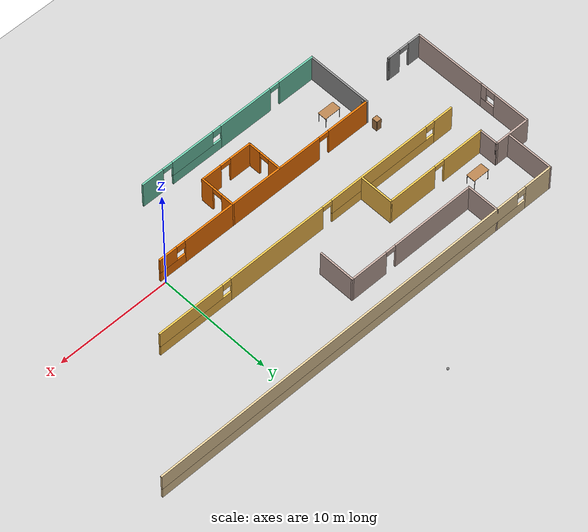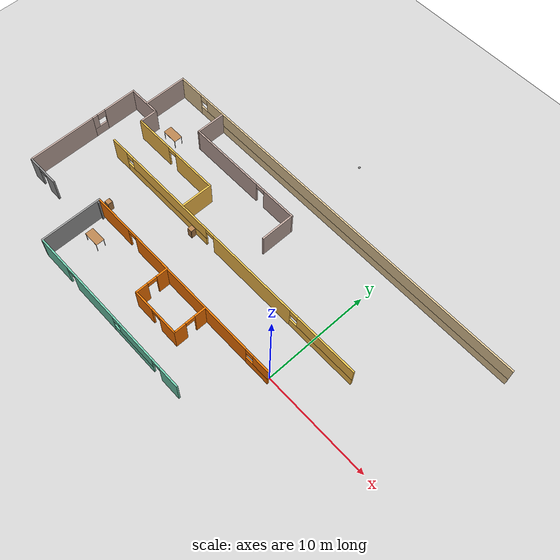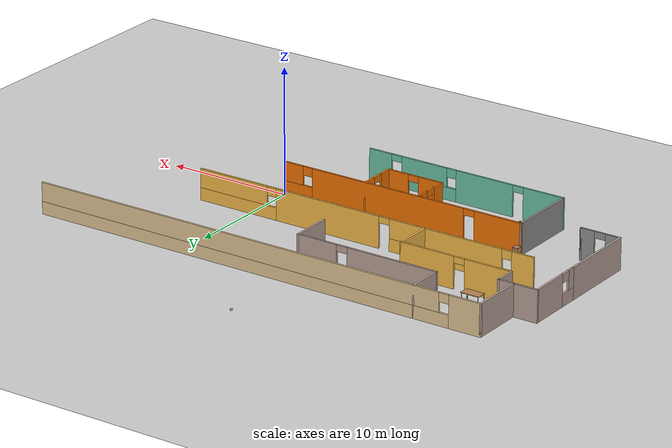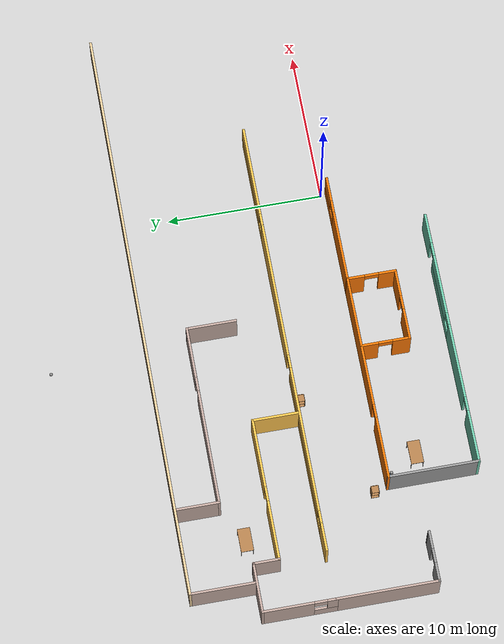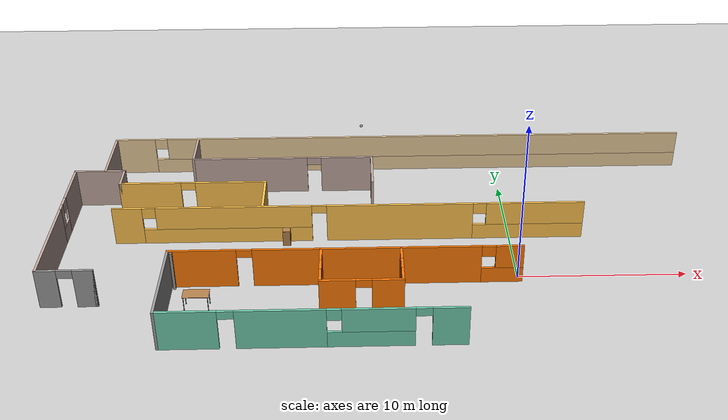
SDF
<sdf version="1.6">
 <world name="default">
  <model name="ground_plane">
   <static>1</static>
   <link name="link">
    <collision name="collision">
     <geometry><plane><normal>0 0 1</normal><size>100 100</size></plane></geometry>
     <surface>
      <contact><collide_bitmask>65535</collide_bitmask></contact>
      <friction><ode><mu>100</mu><mu2>50</mu2></ode></friction>
     </surface>
    </collision>
    <visual name="visual">
     <cast_shadows>0</cast_shadows>
     <geometry><plane><normal>0 0 1</normal><size>100 100</size></plane></geometry>
     <material>
      <script><uri>file://media/materials/scripts/gazebo.material</uri><name>Gazebo/Grey</name></script>
     </material>
    </visual>
   </link>
  </model>
  <model name="office">
   <pose>-7.49516 -7.8361 0 0 -0 0</pose>
   <link name="Wall_107">
    <pose>-3.97884 5.92013 0 0 0 -1.5708</pose>
    <visual name="Wall_107_Visual_0">
     <pose>-1.03263 0 1.25 0 -0 0</pose>
     <geometry><box><size>1.16841 0.15 2.5</size></box></geometry>
     <material>
      <script><uri>file://media/materials/scripts/gazebo.material</uri><name>Gazebo/Grey</name></script>
      <ambient>0.996078 0.47451 0.0196078 1</ambient>
     </material>
     <meta><layer>0</layer></meta>
    </visual>
    <collision name="Wall_107_Collision_0">
     <geometry><box><size>1.16841 0.15 2.5</size></box></geometry>
     <pose>-1.03263 0 1.25 0 -0 0</pose>
    </collision>
    <visual name="Wall_107_Visual_1">
     <pose>1.0342 0 1.25 0 -0 0</pose>
     <geometry><box><size>1.16527 0.15 2.5</size></box></geometry>
     <material>
      <script><uri>file://media/materials/scripts/gazebo.material</uri><name>Gazebo/Grey</name></script>
      <ambient>0.996078 0.47451 0.0196078 1</ambient>
     </material>
     <meta><layer>0</layer></meta>
    </visual>
    <collision name="Wall_107_Collision_1">
     <geometry><box><size>1.16527 0.15 2.5</size></box></geometry>
     <pose>1.0342 0 1.25 0 -0 0</pose>
    </collision>
    <visual name="Wall_107_Visual_2">
     <pose>0.001569 0 2.25 0 -0 0</pose>
     <geometry><box><size>0.9 0.15 0.5</size></box></geometry>
     <material>
      <script><uri>file://media/materials/scripts/gazebo.material</uri><name>Gazebo/Grey</name></script>
      <ambient>0.996078 0.47451 0.0196078 1</ambient>
     </material>
     <meta><layer>0</layer></meta>
    </visual>
    <collision name="Wall_107_Collision_2">
     <geometry><box><size>0.9 0.15 0.5</size></box></geometry>
     <pose>0.001569 0 2.25 0 -0 0</pose>
    </collision>
   </link>
   <link name="Wall_108">
    <pose>-1.67884 4.37813 0 0 -0 0</pose>
    <visual name="Wall_108_Visual_0">
     <pose>-1.35534 0 1.25 0 -0 0</pose>
     <geometry><box><size>2.03931 0.15 2.5</size></box></geometry>
     <material>
      <script><uri>file://media/materials/scripts/gazebo.material</uri><name>Gazebo/Grey</name></script>
      <ambient>0.996078 0.47451 0.0196078 1</ambient>
     </material>
     <meta><layer>0</layer></meta>
    </visual>
    <collision name="Wall_108_Collision_0">
     <geometry><box><size>2.03931 0.15 2.5</size></box></geometry>
     <pose>-1.35534 0 1.25 0 -0 0</pose>
    </collision>
    <visual name="Wall_108_Visual_1">
     <pose>1.46966 0 1.25 0 -0 0</pose>
     <geometry><box><size>1.81069 0.15 2.5</size></box></geometry>
     <material>
      <script><uri>file://media/materials/scripts/gazebo.material</uri><name>Gazebo/Grey</name></script>
      <ambient>0.996078 0.47451 0.0196078 1</ambient>
     </material>
     <meta><layer>0</layer></meta>
    </visual>
    <collision name="Wall_108_Collision_1">
     <geometry><box><size>1.81069 0.15 2.5</size></box></geometry>
     <pose>1.46966 0 1.25 0 -0 0</pose>
    </collision>
    <visual name="Wall_108_Visual_2">
     <pose>0.114313 0 2.25 0 -0 0</pose>
     <geometry><box><size>0.9 0.15 0.5</size></box></geometry>
     <material>
      <script><uri>file://media/materials/scripts/gazebo.material</uri><name>Gazebo/Grey</name></script>
      <ambient>0.996078 0.47451 0.0196078 1</ambient>
     </material>
     <meta><layer>0</layer></meta>
    </visual>
    <collision name="Wall_108_Collision_2">
     <geometry><box><size>0.9 0.15 0.5</size></box></geometry>
     <pose>0.114313 0 2.25 0 -0 0</pose>
    </collision>
   </link>
   <link name="Wall_109">
    <pose>0.621161 5.92013 0 0 -0 1.5708</pose>
    <visual name="Wall_109_Visual_0">
     <pose>-1.03428 0 1.25 0 -0 0</pose>
     <geometry><box><size>1.16543 0.15 2.5</size></box></geometry>
     <material>
      <script><uri>file://media/materials/scripts/gazebo.material</uri><name>Gazebo/Grey</name></script>
      <ambient>0.996078 0.47451 0.0196078 1</ambient>
     </material>
     <meta><layer>0</layer></meta>
    </visual>
    <collision name="Wall_109_Collision_0">
     <geometry><box><size>1.16543 0.15 2.5</size></box></geometry>
     <pose>-1.03428 0 1.25 0 -0 0</pose>
    </collision>
    <visual name="Wall_109_Visual_1">
     <pose>1.03272 0 1.25 0 -0 0</pose>
     <geometry><box><size>1.16857 0.15 2.5</size></box></geometry>
     <material>
      <script><uri>file://media/materials/scripts/gazebo.material</uri><name>Gazebo/Grey</name></script>
      <ambient>0.996078 0.47451 0.0196078 1</ambient>
     </material>
     <meta><layer>0</layer></meta>
    </visual>
    <collision name="Wall_109_Collision_1">
     <geometry><box><size>1.16857 0.15 2.5</size></box></geometry>
     <pose>1.03272 0 1.25 0 -0 0</pose>
    </collision>
    <visual name="Wall_109_Visual_2">
     <pose>-0.001569 0 2.25 0 -0 0</pose>
     <geometry><box><size>0.9 0.15 0.5</size></box></geometry>
     <material>
      <script><uri>file://media/materials/scripts/gazebo.material</uri><name>Gazebo/Grey</name></script>
      <ambient>0.996078 0.47451 0.0196078 1</ambient>
     </material>
     <meta><layer>0</layer></meta>
    </visual>
    <collision name="Wall_109_Collision_2">
     <geometry><box><size>0.9 0.15 0.5</size></box></geometry>
     <pose>-0.001569 0 2.25 0 -0 0</pose>
    </collision>
   </link>
   <link name="Wall_111">
    <pose>-2.36175 12.0954 0 0 -0 0</pose>
    <visual name="Wall_111_Visual_0">
     <pose>-13.4635 0 1.25 0 -0 0</pose>
     <geometry><box><size>1.82295 0.15 2.5</size></box></geometry>
     <material>
      <script><uri>file://media/materials/scripts/gazebo.material</uri><name>Gazebo/Grey</name></script>
      <ambient>1 0.764706 0.305882 1</ambient>
     </material>
     <meta><layer>0</layer></meta>
    </visual>
    <collision name="Wall_111_Collision_0">
     <geometry><box><size>1.82295 0.15 2.5</size></box></geometry>
     <pose>-13.4635 0 1.25 0 -0 0</pose>
    </collision>
    <visual name="Wall_111_Visual_1">
     <pose>3.09605 0 1.25 0 -0 0</pose>
     <geometry><box><size>8.94656 0.15 2.5</size></box></geometry>
     <material>
      <script><uri>file://media/materials/scripts/gazebo.material</uri><name>Gazebo/Grey</name></script>
      <ambient>1 0.764706 0.305882 1</ambient>
     </material>
     <meta><layer>0</layer></meta>
    </visual>
    <collision name="Wall_111_Collision_1">
     <geometry><box><size>8.94656 0.15 2.5</size></box></geometry>
     <pose>3.09605 0 1.25 0 -0 0</pose>
    </collision>
    <visual name="Wall_111_Visual_2">
     <pose>-7.41464 0 0.5 0 -0 0</pose>
     <geometry><box><size>10.2748 0.15 1</size></box></geometry>
     <material>
      <script><uri>file://media/materials/scripts/gazebo.material</uri><name>Gazebo/Grey</name></script>
      <ambient>1 0.764706 0.305882 1</ambient>
     </material>
     <meta><layer>0</layer></meta>
    </visual>
    <collision name="Wall_111_Collision_2">
     <geometry><box><size>10.2748 0.15 1</size></box></geometry>
     <pose>-7.41464 0 0.5 0 -0 0</pose>
    </collision>
    <visual name="Wall_111_Visual_3">
     <pose>10.9722 0 0.5 0 -0 0</pose>
     <geometry><box><size>6.80567 0.15 1</size></box></geometry>
     <material>
      <script><uri>file://media/materials/scripts/gazebo.material</uri><name>Gazebo/Grey</name></script>
      <ambient>1 0.764706 0.305882 1</ambient>
     </material>
     <meta><layer>0</layer></meta>
    </visual>
    <collision name="Wall_111_Collision_3">
     <geometry><box><size>6.80567 0.15 1</size></box></geometry>
     <pose>10.9722 0 0.5 0 -0 0</pose>
    </collision>
    <visual name="Wall_111_Visual_4">
     <pose>-7.01464 0 1.75 0 -0 0</pose>
     <geometry><box><size>9.47482 0.15 1.5</size></box></geometry>
     <material>
      <script><uri>file://media/materials/scripts/gazebo.material</uri><name>Gazebo/Grey</name></script>
      <ambient>1 0.764706 0.305882 1</ambient>
     </material>
     <meta><layer>0</layer></meta>
    </visual>
    <collision name="Wall_111_Collision_4">
     <geometry><box><size>9.47482 0.15 1.5</size></box></geometry>
     <pose>-7.01464 0 1.75 0 -0 0</pose>
    </collision>
    <visual name="Wall_111_Visual_5">
     <pose>-7.01464 0 1.75 0 -0 0</pose>
     <geometry><box><size>9.47482 0.15 1.5</size></box></geometry>
     <material>
      <script><uri>file://media/materials/scripts/gazebo.material</uri><name>Gazebo/Grey</name></script>
      <ambient>1 0.764706 0.305882 1</ambient>
     </material>
     <meta><layer>0</layer></meta>
    </visual>
    <collision name="Wall_111_Collision_5">
     <geometry><box><size>9.47482 0.15 1.5</size></box></geometry>
     <pose>-7.01464 0 1.75 0 -0 0</pose>
    </collision>
    <visual name="Wall_111_Visual_6">
     <pose>11.3722 0 1.75 0 -0 0</pose>
     <geometry><box><size>6.00566 0.15 1.5</size></box></geometry>
     <material>
      <script><uri>file://media/materials/scripts/gazebo.material</uri><name>Gazebo/Grey</name></script>
      <ambient>1 0.764706 0.305882 1</ambient>
     </material>
     <meta><layer>0</layer></meta>
    </visual>
    <collision name="Wall_111_Collision_6">
     <geometry><box><size>6.00566 0.15 1.5</size></box></geometry>
     <pose>11.3722 0 1.75 0 -0 0</pose>
    </collision>
    <visual name="Wall_111_Visual_7">
     <pose>-12.152 0 2.15 0 -0 0</pose>
     <geometry><box><size>0.8 0.15 0.7</size></box></geometry>
     <material>
      <script><uri>file://media/materials/scripts/gazebo.material</uri><name>Gazebo/Grey</name></script>
      <ambient>1 0.764706 0.305882 1</ambient>
     </material>
     <meta><layer>0</layer></meta>
    </visual>
    <collision name="Wall_111_Collision_7">
     <geometry><box><size>0.8 0.15 0.7</size></box></geometry>
     <pose>-12.152 0 2.15 0 -0 0</pose>
    </collision>
    <visual name="Wall_111_Visual_8">
     <pose>7.96934 0 2.15 0 -0 0</pose>
     <geometry><box><size>0.8 0.15 0.7</size></box></geometry>
     <material>
      <script><uri>file://media/materials/scripts/gazebo.material</uri><name>Gazebo/Grey</name></script>
      <ambient>1 0.764706 0.305882 1</ambient>
     </material>
     <meta><layer>0</layer></meta>
    </visual>
    <collision name="Wall_111_Collision_8">
     <geometry><box><size>0.8 0.15 0.7</size></box></geometry>
     <pose>7.96934 0 2.15 0 -0 0</pose>
    </collision>
    <visual name="Wall_111_Visual_9">
     <pose>-1.82723 0 2.25 0 -0 0</pose>
     <geometry><box><size>0.9 0.15 0.5</size></box></geometry>
     <material>
      <script><uri>file://media/materials/scripts/gazebo.material</uri><name>Gazebo/Grey</name></script>
      <ambient>1 0.764706 0.305882 1</ambient>
     </material>
     <meta><layer>0</layer></meta>
    </visual>
    <collision name="Wall_111_Collision_9">
     <geometry><box><size>0.9 0.15 0.5</size></box></geometry>
     <pose>-1.82723 0 2.25 0 -0 0</pose>
    </collision>
    <visual name="Wall_111_Visual_10">
     <pose>-1.82723 0 2.25 0 -0 0</pose>
     <geometry><box><size>0.9 0.15 0.5</size></box></geometry>
     <material>
      <script><uri>file://media/materials/scripts/gazebo.material</uri><name>Gazebo/Grey</name></script>
      <ambient>1 0.764706 0.305882 1</ambient>
     </material>
     <meta><layer>0</layer></meta>
    </visual>
    <collision name="Wall_111_Collision_10">
     <geometry><box><size>0.9 0.15 0.5</size></box></geometry>
     <pose>-1.82723 0 2.25 0 -0 0</pose>
    </collision>
   </link>
   <link name="Wall_116">
    <pose>-19.8252 14.3606 0 0 0 -1.5708</pose>
    <visual name="Wall_116_Visual_0">
     <pose>-0.731274 0 1.25 0 -0 0</pose>
     <geometry><box><size>3.28745 0.15 2.5</size></box></geometry>
     <material>
      <script><uri>file://media/materials/scripts/gazebo.material</uri><name>Gazebo/Grey</name></script>
      <ambient>0.760784 0.662745 0.627451 1</ambient>
     </material>
     <meta><layer>0</layer></meta>
    </visual>
    <collision name="Wall_116_Collision_0">
     <geometry><box><size>3.28745 0.15 2.5</size></box></geometry>
     <pose>-0.731274 0 1.25 0 -0 0</pose>
    </collision>
    <visual name="Wall_116_Visual_1">
     <pose>1.64373 0 0.5 0 -0 0</pose>
     <geometry><box><size>1.46255 0.15 1</size></box></geometry>
     <material>
      <script><uri>file://media/materials/scripts/gazebo.material</uri><name>Gazebo/Grey</name></script>
      <ambient>0.760784 0.662745 0.627451 1</ambient>
     </material>
     <meta><layer>0</layer></meta>
    </visual>
    <collision name="Wall_116_Collision_1">
     <geometry><box><size>1.46255 0.15 1</size></box></geometry>
     <pose>1.64373 0 0.5 0 -0 0</pose>
    </collision>
    <visual name="Wall_116_Visual_2">
     <pose>2.04373 0 1.75 0 -0 0</pose>
     <geometry><box><size>0.662549 0.15 1.5</size></box></geometry>
     <material>
      <script><uri>file://media/materials/scripts/gazebo.material</uri><name>Gazebo/Grey</name></script>
      <ambient>0.760784 0.662745 0.627451 1</ambient>
     </material>
     <meta><layer>0</layer></meta>
    </visual>
    <collision name="Wall_116_Collision_2">
     <geometry><box><size>0.662549 0.15 1.5</size></box></geometry>
     <pose>2.04373 0 1.75 0 -0 0</pose>
    </collision>
    <visual name="Wall_116_Visual_3">
     <pose>1.31245 0 2.15 0 -0 0</pose>
     <geometry><box><size>0.8 0.15 0.7</size></box></geometry>
     <material>
      <script><uri>file://media/materials/scripts/gazebo.material</uri><name>Gazebo/Grey</name></script>
      <ambient>0.760784 0.662745 0.627451 1</ambient>
     </material>
     <meta><layer>0</layer></meta>
    </visual>
    <collision name="Wall_116_Collision_3">
     <geometry><box><size>0.8 0.15 0.7</size></box></geometry>
     <pose>1.31245 0 2.15 0 -0 0</pose>
    </collision>
   </link>
   <link name="Wall_119">
    <collision name="Wall_119_Collision">
     <geometry><box><size>3.25 0.15 2.5</size></box></geometry>
     <pose>0 0 1.25 0 -0 0</pose>
    </collision>
    <visual name="Wall_119_Visual">
     <pose>0 0 1.25 0 -0 0</pose>
     <geometry><box><size>3.25 0.15 2.5</size></box></geometry>
     <material>
      <script><uri>file://media/materials/scripts/gazebo.material</uri><name>Gazebo/Grey</name></script>
      <ambient>0.760784 0.662745 0.627451 1</ambient>
     </material>
     <meta><layer>0</layer></meta>
    </visual>
    <pose>-18.2752 16.6606 0 0 -0 3.14159</pose>
   </link>
   <link name="Wall_121">
    <collision name="Wall_121_Collision">
     <geometry><box><size>6.5 0.15 2.5</size></box></geometry>
     <pose>0 0 1.25 0 -0 0</pose>
    </collision>
    <visual name="Wall_121_Visual">
     <pose>0 0 1.25 0 -0 0</pose>
     <geometry><box><size>6.5 0.15 2.5</size></box></geometry>
     <material>
      <script><uri>file://media/materials/scripts/gazebo.material</uri><name>Gazebo/Grey</name></script>
      <ambient>0.760784 0.662745 0.627451 1</ambient>
     </material>
     <meta><layer>0</layer></meta>
    </visual>
    <pose>-19.825 8.88534 0 0 0 -1.57074</pose>
   </link>
   <link name="Wall_122">
    <pose>-18.2433 5.71013 0 0 -0 0</pose>
    <visual name="Wall_122_Visual_0">
     <pose>-1.03899 0 1.25 0 -0 0</pose>
     <geometry><box><size>1.23503 0.15 2.5</size></box></geometry>
     <material>
      <script><uri>file://media/materials/scripts/gazebo.material</uri><name>Gazebo/Grey</name></script>
      <ambient>1 1 1 1</ambient>
     </material>
     <meta><layer>0</layer></meta>
    </visual>
    <collision name="Wall_122_Collision_0">
     <geometry><box><size>1.23503 0.15 2.5</size></box></geometry>
     <pose>-1.03899 0 1.25 0 -0 0</pose>
    </collision>
    <visual name="Wall_122_Visual_1">
     <pose>1.06751 0 1.25 0 -0 0</pose>
     <geometry><box><size>1.17797 0.15 2.5</size></box></geometry>
     <material>
      <script><uri>file://media/materials/scripts/gazebo.material</uri><name>Gazebo/Grey</name></script>
      <ambient>1 1 1 1</ambient>
     </material>
     <meta><layer>0</layer></meta>
    </visual>
    <collision name="Wall_122_Collision_1">
     <geometry><box><size>1.17797 0.15 2.5</size></box></geometry>
     <pose>1.06751 0 1.25 0 -0 0</pose>
    </collision>
    <visual name="Wall_122_Visual_2">
     <pose>0.02853 0 2.25 0 -0 0</pose>
     <geometry><box><size>0.9 0.15 0.5</size></box></geometry>
     <material>
      <script><uri>file://media/materials/scripts/gazebo.material</uri><name>Gazebo/Grey</name></script>
      <ambient>1 1 1 1</ambient>
     </material>
     <meta><layer>0</layer></meta>
    </visual>
    <collision name="Wall_122_Collision_2">
     <geometry><box><size>0.9 0.15 0.5</size></box></geometry>
     <pose>0.02853 0 2.25 0 -0 0</pose>
    </collision>
   </link>
   <link name="Wall_123">
    <collision name="Wall_123_Collision">
     <geometry><box><size>0.15 0.15 2.5</size></box></geometry>
     <pose>0 0 1.25 0 -0 0</pose>
    </collision>
    <visual name="Wall_123_Visual">
     <pose>0 0 1.25 0 -0 0</pose>
     <geometry><box><size>0.15 0.15 2.5</size></box></geometry>
     <material>
      <script><uri>file://media/materials/scripts/gazebo.material</uri><name>Gazebo/Grey</name></script>
      <ambient>1 1 1 1</ambient>
     </material>
     <meta><layer>0</layer></meta>
    </visual>
    <pose>-16.6618 5.71013 0 0 -0 0</pose>
   </link>
   <link name="Wall_125">
    <pose>0.94866 20.7991 0 0 -0 0</pose>
    <visual name="Wall_125_Visual_0">
     <pose>-17.6396 0 1.25 0 -0 0</pose>
     <geometry><box><size>2.6238 0.15 2.5</size></box></geometry>
     <material>
      <script><uri>file://media/materials/scripts/gazebo.material</uri><name>Gazebo/Grey</name></script>
      <ambient>0.921569 0.807843 0.615686 1</ambient>
     </material>
     <meta><layer>0</layer></meta>
    </visual>
    <collision name="Wall_125_Collision_0">
     <geometry><box><size>2.6238 0.15 2.5</size></box></geometry>
     <pose>-17.6396 0 1.25 0 -0 0</pose>
    </collision>
    <visual name="Wall_125_Visual_1">
     <pose>1.3119 0 0.5 0 -0 0</pose>
     <geometry><box><size>35.2792 0.15 1</size></box></geometry>
     <material>
      <script><uri>file://media/materials/scripts/gazebo.material</uri><name>Gazebo/Grey</name></script>
      <ambient>0.921569 0.807843 0.615686 1</ambient>
     </material>
     <meta><layer>0</layer></meta>
    </visual>
    <collision name="Wall_125_Collision_1">
     <geometry><box><size>35.2792 0.15 1</size></box></geometry>
     <pose>1.3119 0 0.5 0 -0 0</pose>
    </collision>
    <visual name="Wall_125_Visual_2">
     <pose>1.7119 0 1.75 0 -0 0</pose>
     <geometry><box><size>34.4792 0.15 1.5</size></box></geometry>
     <material>
      <script><uri>file://media/materials/scripts/gazebo.material</uri><name>Gazebo/Grey</name></script>
      <ambient>0.921569 0.807843 0.615686 1</ambient>
     </material>
     <meta><layer>0</layer></meta>
    </visual>
    <collision name="Wall_125_Collision_2">
     <geometry><box><size>34.4792 0.15 1.5</size></box></geometry>
     <pose>1.7119 0 1.75 0 -0 0</pose>
    </collision>
    <visual name="Wall_125_Visual_3">
     <pose>-15.9277 0 2.15 0 -0 0</pose>
     <geometry><box><size>0.8 0.15 0.7</size></box></geometry>
     <material>
      <script><uri>file://media/materials/scripts/gazebo.material</uri><name>Gazebo/Grey</name></script>
      <ambient>0.921569 0.807843 0.615686 1</ambient>
     </material>
     <meta><layer>0</layer></meta>
    </visual>
    <collision name="Wall_125_Collision_3">
     <geometry><box><size>0.8 0.15 0.7</size></box></geometry>
     <pose>-15.9277 0 2.15 0 -0 0</pose>
    </collision>
   </link>
   <link name="Wall_208">
    <collision name="Wall_208_Collision">
     <geometry><box><size>0.15 0.15 2.5</size></box></geometry>
     <pose>0 0 1.25 0 -0 0</pose>
    </collision>
    <visual name="Wall_208_Visual">
     <pose>0 0 1.25 0 -0 0</pose>
     <geometry><box><size>0.15 0.15 2.5</size></box></geometry>
     <material>
      <script><uri>file://media/materials/scripts/gazebo.material</uri><name>Gazebo/Grey</name></script>
      <ambient>0.760784 0.662745 0.627451 1</ambient>
     </material>
     <meta><layer>0</layer></meta>
    </visual>
    <pose>-16.7252 16.6606 0 0 -0 0</pose>
   </link>
   <link name="Wall_228">
    <collision name="Wall_228_Collision">
     <geometry><box><size>3.25 0.15 2.5</size></box></geometry>
     <pose>0 0 1.25 0 -0 0</pose>
    </collision>
    <visual name="Wall_228_Visual">
     <pose>0 0 1.25 0 -0 0</pose>
     <geometry><box><size>3.25 0.15 2.5</size></box></geometry>
     <material>
      <script><uri>file://media/materials/scripts/gazebo.material</uri><name>Gazebo/Grey</name></script>
      <ambient>0.760784 0.662745 0.627451 1</ambient>
     </material>
     <meta><layer>0</layer></meta>
    </visual>
    <pose>-0.892206 16.4831 0 0 -0 1.5708</pose>
   </link>
   <link name="Wall_229">
    <pose>-6.69202 18.0331 0 0 -0 3.14159</pose>
    <visual name="Wall_229_Visual_0">
     <pose>-4.18589 0 1.25 0 -0 0</pose>
     <geometry><box><size>3.37822 0.15 2.5</size></box></geometry>
     <material>
      <script><uri>file://media/materials/scripts/gazebo.material</uri><name>Gazebo/Grey</name></script>
      <ambient>0.760784 0.662745 0.627451 1</ambient>
     </material>
     <meta><layer>0</layer></meta>
    </visual>
    <collision name="Wall_229_Collision_0">
     <geometry><box><size>3.37822 0.15 2.5</size></box></geometry>
     <pose>-4.18589 0 1.25 0 -0 0</pose>
    </collision>
    <visual name="Wall_229_Visual_1">
     <pose>2.13911 0 1.25 0 -0 0</pose>
     <geometry><box><size>7.47178 0.15 2.5</size></box></geometry>
     <material>
      <script><uri>file://media/materials/scripts/gazebo.material</uri><name>Gazebo/Grey</name></script>
      <ambient>0.760784 0.662745 0.627451 1</ambient>
     </material>
     <meta><layer>0</layer></meta>
    </visual>
    <collision name="Wall_229_Collision_1">
     <geometry><box><size>7.47178 0.15 2.5</size></box></geometry>
     <pose>2.13911 0 1.25 0 -0 0</pose>
    </collision>
    <visual name="Wall_229_Visual_2">
     <pose>-2.04678 0 2.25 0 -0 0</pose>
     <geometry><box><size>0.9 0.15 0.5</size></box></geometry>
     <material>
      <script><uri>file://media/materials/scripts/gazebo.material</uri><name>Gazebo/Grey</name></script>
      <ambient>0.760784 0.662745 0.627451 1</ambient>
     </material>
     <meta><layer>0</layer></meta>
    </visual>
    <collision name="Wall_229_Collision_2">
     <geometry><box><size>0.9 0.15 0.5</size></box></geometry>
     <pose>-2.04678 0 2.25 0 -0 0</pose>
    </collision>
   </link>
   <link name="Wall_230">
    <collision name="Wall_230_Collision">
     <geometry><box><size>2.916 0.15 2.5</size></box></geometry>
     <pose>0 0 1.25 0 -0 0</pose>
    </collision>
    <visual name="Wall_230_Visual">
     <pose>0 0 1.25 0 -0 0</pose>
     <geometry><box><size>2.916 0.15 2.5</size></box></geometry>
     <material>
      <script><uri>file://media/materials/scripts/gazebo.material</uri><name>Gazebo/Grey</name></script>
      <ambient>0.760784 0.662745 0.627451 1</ambient>
     </material>
     <meta><layer>0</layer></meta>
    </visual>
    <pose>-12.4918 19.4161 0 0 -0 1.5708</pose>
   </link>
   <link name="Wall_232">
    <collision name="Wall_232_Collision">
     <geometry><box><size>4.25 0.15 2.5</size></box></geometry>
     <pose>0 0 1.25 0 -0 0</pose>
    </collision>
    <visual name="Wall_232_Visual">
     <pose>0 0 1.25 0 -0 0</pose>
     <geometry><box><size>4.25 0.15 2.5</size></box></geometry>
     <material>
      <script><uri>file://media/materials/scripts/gazebo.material</uri><name>Gazebo/Grey</name></script>
      <ambient>0.760784 0.662745 0.627451 1</ambient>
     </material>
     <meta><layer>0</layer></meta>
    </visual>
    <pose>-17.9278 18.7491 0 0 0 -1.5708</pose>
   </link>
   <link name="Wall_234">
    <collision name="Wall_234_Collision">
     <geometry><box><size>1.75 0.15 2.5</size></box></geometry>
     <pose>0 0 1.25 0 -0 0</pose>
    </collision>
    <visual name="Wall_234_Visual">
     <pose>0 0 1.25 0 -0 0</pose>
     <geometry><box><size>1.75 0.15 2.5</size></box></geometry>
     <material>
      <script><uri>file://media/materials/scripts/gazebo.material</uri><name>Gazebo/Grey</name></script>
      <ambient>0.760784 0.662745 0.627451 1</ambient>
     </material>
     <meta><layer>0</layer></meta>
    </visual>
    <pose>-16.7252 15.8606 0 0 0 -1.5708</pose>
   </link>
   <link name="Wall_235">
    <pose>-12.1752 15.0606 0 0 -0 0</pose>
    <visual name="Wall_235_Visual_0">
     <pose>-2.69032 0 1.25 0 -0 0</pose>
     <geometry><box><size>3.86936 0.15 2.5</size></box></geometry>
     <material>
      <script><uri>file://media/materials/scripts/gazebo.material</uri><name>Gazebo/Grey</name></script>
      <ambient>1 0.764706 0.305882 1</ambient>
     </material>
     <meta><layer>0</layer></meta>
    </visual>
    <collision name="Wall_235_Collision_0">
     <geometry><box><size>3.86936 0.15 2.5</size></box></geometry>
     <pose>-2.69032 0 1.25 0 -0 0</pose>
    </collision>
    <visual name="Wall_235_Visual_1">
     <pose>2.38468 0 1.25 0 -0 0</pose>
     <geometry><box><size>4.48064 0.15 2.5</size></box></geometry>
     <material>
      <script><uri>file://media/materials/scripts/gazebo.material</uri><name>Gazebo/Grey</name></script>
      <ambient>1 0.764706 0.305882 1</ambient>
     </material>
     <meta><layer>0</layer></meta>
    </visual>
    <collision name="Wall_235_Collision_1">
     <geometry><box><size>4.48064 0.15 2.5</size></box></geometry>
     <pose>2.38468 0 1.25 0 -0 0</pose>
    </collision>
    <visual name="Wall_235_Visual_2">
     <pose>-0.305643 0 2.25 0 -0 0</pose>
     <geometry><box><size>0.9 0.15 0.5</size></box></geometry>
     <material>
      <script><uri>file://media/materials/scripts/gazebo.material</uri><name>Gazebo/Grey</name></script>
      <ambient>1 0.764706 0.305882 1</ambient>
     </material>
     <meta><layer>0</layer></meta>
    </visual>
    <collision name="Wall_235_Collision_2">
     <geometry><box><size>0.9 0.15 0.5</size></box></geometry>
     <pose>-0.305643 0 2.25 0 -0 0</pose>
    </collision>
   </link>
   <link name="Wall_236">
    <collision name="Wall_236_Collision">
     <geometry><box><size>3 0.15 2.5</size></box></geometry>
     <pose>0 0 1.25 0 -0 0</pose>
    </collision>
    <visual name="Wall_236_Visual">
     <pose>0 0 1.25 0 -0 0</pose>
     <geometry><box><size>3 0.15 2.5</size></box></geometry>
     <material>
      <script><uri>file://media/materials/scripts/gazebo.material</uri><name>Gazebo/Grey</name></script>
      <ambient>1 0.764706 0.305882 1</ambient>
     </material>
     <meta><layer>0</layer></meta>
    </visual>
    <pose>-7.62518 13.6356 0 0 0 -1.5708</pose>
   </link>
   <link name="Wall_78">
    <pose>-4.36434 1.76313 0 0 -0 0</pose>
    <visual name="Wall_78_Visual_0">
     <pose>-6.72523 0 1.25 0 -0 0</pose>
     <geometry><box><size>3.43279 0.15 2.5</size></box></geometry>
     <material>
      <script><uri>file://media/materials/scripts/gazebo.material</uri><name>Gazebo/Grey</name></script>
      <ambient>0.435294 0.796078 0.67451 1</ambient>
     </material>
     <meta><layer>0</layer></meta>
    </visual>
    <collision name="Wall_78_Collision_0">
     <geometry><box><size>3.43279 0.15 2.5</size></box></geometry>
     <pose>-6.72523 0 1.25 0 -0 0</pose>
    </collision>
    <visual name="Wall_78_Visual_1">
     <pose>-1.65973 0 1.25 0 -0 0</pose>
     <geometry><box><size>4.89822 0.15 2.5</size></box></geometry>
     <material>
      <script><uri>file://media/materials/scripts/gazebo.material</uri><name>Gazebo/Grey</name></script>
      <ambient>0.435294 0.796078 0.67451 1</ambient>
     </material>
     <meta><layer>0</layer></meta>
    </visual>
    <collision name="Wall_78_Collision_1">
     <geometry><box><size>4.89822 0.15 2.5</size></box></geometry>
     <pose>-1.65973 0 1.25 0 -0 0</pose>
    </collision>
    <visual name="Wall_78_Visual_2">
     <pose>7.44317 0 1.25 0 -0 0</pose>
     <geometry><box><size>1.99692 0.15 2.5</size></box></geometry>
     <material>
      <script><uri>file://media/materials/scripts/gazebo.material</uri><name>Gazebo/Grey</name></script>
      <ambient>0.435294 0.796078 0.67451 1</ambient>
     </material>
     <meta><layer>0</layer></meta>
    </visual>
    <collision name="Wall_78_Collision_2">
     <geometry><box><size>1.99692 0.15 2.5</size></box></geometry>
     <pose>7.44317 0 1.25 0 -0 0</pose>
    </collision>
    <visual name="Wall_78_Visual_3">
     <pose>3.16705 0 0.5 0 -0 0</pose>
     <geometry><box><size>4.75533 0.15 1</size></box></geometry>
     <material>
      <script><uri>file://media/materials/scripts/gazebo.material</uri><name>Gazebo/Grey</name></script>
      <ambient>0.435294 0.796078 0.67451 1</ambient>
     </material>
     <meta><layer>0</layer></meta>
    </visual>
    <collision name="Wall_78_Collision_3">
     <geometry><box><size>4.75533 0.15 1</size></box></geometry>
     <pose>3.16705 0 0.5 0 -0 0</pose>
    </collision>
    <visual name="Wall_78_Visual_4">
     <pose>3.56705 0 1.75 0 -0 0</pose>
     <geometry><box><size>3.95533 0.15 1.5</size></box></geometry>
     <material>
      <script><uri>file://media/materials/scripts/gazebo.material</uri><name>Gazebo/Grey</name></script>
      <ambient>0.435294 0.796078 0.67451 1</ambient>
     </material>
     <meta><layer>0</layer></meta>
    </visual>
    <collision name="Wall_78_Collision_4">
     <geometry><box><size>3.95533 0.15 1.5</size></box></geometry>
     <pose>3.56705 0 1.75 0 -0 0</pose>
    </collision>
    <visual name="Wall_78_Visual_5">
     <pose>1.18938 0 2.15 0 -0 0</pose>
     <geometry><box><size>0.8 0.15 0.7</size></box></geometry>
     <material>
      <script><uri>file://media/materials/scripts/gazebo.material</uri><name>Gazebo/Grey</name></script>
      <ambient>0.435294 0.796078 0.67451 1</ambient>
     </material>
     <meta><layer>0</layer></meta>
    </visual>
    <collision name="Wall_78_Collision_5">
     <geometry><box><size>0.8 0.15 0.7</size></box></geometry>
     <pose>1.18938 0 2.15 0 -0 0</pose>
    </collision>
    <visual name="Wall_78_Visual_6">
     <pose>-4.55884 0 2.25 0 -0 0</pose>
     <geometry><box><size>0.9 0.15 0.5</size></box></geometry>
     <material>
      <script><uri>file://media/materials/scripts/gazebo.material</uri><name>Gazebo/Grey</name></script>
      <ambient>0.435294 0.796078 0.67451 1</ambient>
     </material>
     <meta><layer>0</layer></meta>
    </visual>
    <collision name="Wall_78_Collision_6">
     <geometry><box><size>0.9 0.15 0.5</size></box></geometry>
     <pose>-4.55884 0 2.25 0 -0 0</pose>
    </collision>
    <visual name="Wall_78_Visual_7">
     <pose>5.99471 0 2.25 0 -0 0</pose>
     <geometry><box><size>0.9 0.15 0.5</size></box></geometry>
     <material>
      <script><uri>file://media/materials/scripts/gazebo.material</uri><name>Gazebo/Grey</name></script>
      <ambient>0.435294 0.796078 0.67451 1</ambient>
     </material>
     <meta><layer>0</layer></meta>
    </visual>
    <collision name="Wall_78_Collision_7">
     <geometry><box><size>0.9 0.15 0.5</size></box></geometry>
     <pose>5.99471 0 2.25 0 -0 0</pose>
    </collision>
   </link>
   <link name="Wall_91">
    <collision name="Wall_91_Collision">
     <geometry><box><size>0.15 0.15 2.5</size></box></geometry>
     <pose>0 0 1.25 0 -0 0</pose>
    </collision>
    <visual name="Wall_91_Visual">
     <pose>0 0 1.25 0 -0 0</pose>
     <geometry><box><size>0.15 0.15 2.5</size></box></geometry>
     <material>
      <script><uri>file://media/materials/scripts/gazebo.material</uri><name>Gazebo/Grey</name></script>
      <ambient>1 1 1 1</ambient>
     </material>
     <meta><layer>0</layer></meta>
    </visual>
    <pose>-12.5048 7.23613 0 0 -0 0</pose>
   </link>
   <link name="Wall_94">
    <collision name="Wall_94_Collision">
     <geometry><box><size>5.84996 0.15 2.5</size></box></geometry>
     <pose>0 0 1.25 0 -0 0</pose>
    </collision>
    <visual name="Wall_94_Visual">
     <pose>0 0 1.25 0 -0 0</pose>
     <geometry><box><size>5.84996 0.15 2.5</size></box></geometry>
     <material>
      <script><uri>file://media/materials/scripts/gazebo.material</uri><name>Gazebo/Grey</name></script>
      <ambient>1 1 1 1</ambient>
     </material>
     <meta><layer>0</layer></meta>
    </visual>
    <pose>-12.7308 4.61263 0 0 -0 1.5708</pose>
   </link>
   <link name="Wall_95">
    <pose>-2.54584 7.46213 0 0 -0 0</pose>
    <visual name="Wall_95_Visual_0">
     <pose>-8.26704 0 1.25 0 -0 0</pose>
     <geometry><box><size>3.98599 0.15 2.5</size></box></geometry>
     <material>
      <script><uri>file://media/materials/scripts/gazebo.material</uri><name>Gazebo/Grey</name></script>
      <ambient>0.996078 0.47451 0.0196078 1</ambient>
     </material>
     <meta><layer>0</layer></meta>
    </visual>
    <collision name="Wall_95_Collision_0">
     <geometry><box><size>3.98599 0.15 2.5</size></box></geometry>
     <pose>-8.26704 0 1.25 0 -0 0</pose>
    </collision>
    <visual name="Wall_95_Visual_1">
     <pose>1.22419 0 1.25 0 -0 0</pose>
     <geometry><box><size>13.1965 0.15 2.5</size></box></geometry>
     <material>
      <script><uri>file://media/materials/scripts/gazebo.material</uri><name>Gazebo/Grey</name></script>
      <ambient>0.996078 0.47451 0.0196078 1</ambient>
     </material>
     <meta><layer>0</layer></meta>
    </visual>
    <collision name="Wall_95_Collision_1">
     <geometry><box><size>13.1965 0.15 2.5</size></box></geometry>
     <pose>1.22419 0 1.25 0 -0 0</pose>
    </collision>
    <visual name="Wall_95_Visual_2">
     <pose>9.04123 0 0.5 0 -0 0</pose>
     <geometry><box><size>2.43761 0.15 1</size></box></geometry>
     <material>
      <script><uri>file://media/materials/scripts/gazebo.material</uri><name>Gazebo/Grey</name></script>
      <ambient>0.996078 0.47451 0.0196078 1</ambient>
     </material>
     <meta><layer>0</layer></meta>
    </visual>
    <collision name="Wall_95_Collision_2">
     <geometry><box><size>2.43761 0.15 1</size></box></geometry>
     <pose>9.04123 0 0.5 0 -0 0</pose>
    </collision>
    <visual name="Wall_95_Visual_3">
     <pose>9.44123 0 1.75 0 -0 0</pose>
     <geometry><box><size>1.63761 0.15 1.5</size></box></geometry>
     <material>
      <script><uri>file://media/materials/scripts/gazebo.material</uri><name>Gazebo/Grey</name></script>
      <ambient>0.996078 0.47451 0.0196078 1</ambient>
     </material>
     <meta><layer>0</layer></meta>
    </visual>
    <collision name="Wall_95_Collision_3">
     <geometry><box><size>1.63761 0.15 1.5</size></box></geometry>
     <pose>9.44123 0 1.75 0 -0 0</pose>
    </collision>
    <visual name="Wall_95_Visual_4">
     <pose>8.22242 0 2.15 0 -0 0</pose>
     <geometry><box><size>0.8 0.15 0.7</size></box></geometry>
     <material>
      <script><uri>file://media/materials/scripts/gazebo.material</uri><name>Gazebo/Grey</name></script>
      <ambient>0.996078 0.47451 0.0196078 1</ambient>
     </material>
     <meta><layer>0</layer></meta>
    </visual>
    <collision name="Wall_95_Collision_4">
     <geometry><box><size>0.8 0.15 0.7</size></box></geometry>
     <pose>8.22242 0 2.15 0 -0 0</pose>
    </collision>
    <visual name="Wall_95_Visual_5">
     <pose>-5.82405 0 2.25 0 -0 0</pose>
     <geometry><box><size>0.9 0.15 0.5</size></box></geometry>
     <material>
      <script><uri>file://media/materials/scripts/gazebo.material</uri><name>Gazebo/Grey</name></script>
      <ambient>0.996078 0.47451 0.0196078 1</ambient>
     </material>
     <meta><layer>0</layer></meta>
    </visual>
    <collision name="Wall_95_Collision_5">
     <geometry><box><size>0.9 0.15 0.5</size></box></geometry>
     <pose>-5.82405 0 2.25 0 -0 0</pose>
    </collision>
   </link>
   <static>1</static>
  </model>
  <model name="table_7">
   <static>1</static>
   <link name="link">
    <collision name="surface">
     <pose>0 0 1 0 -0 0</pose>
     <geometry><box><size>1.5 0.8 0.03</size></box></geometry>
     <surface><friction><ode><mu>0.6</mu><mu2>0.6</mu2></ode></friction></surface>
    </collision>
    <visual name="visual1">
     <pose>0 0 1 0 -0 0</pose>
     <geometry><box><size>1.5 0.8 0.03</size></box></geometry>
     <material>
      <script><uri>file://media/materials/scripts/gazebo.material</uri><name>Gazebo/Wood</name></script>
     </material>
    </visual>
    <collision name="front_left_leg">
     <pose>0.68 0.38 0.5 0 -0 0</pose>
     <geometry><cylinder><radius>0.02</radius><length>1</length></cylinder></geometry>
    </collision>
    <visual name="front_left_leg">
     <pose>0.68 0.38 0.5 0 -0 0</pose>
     <geometry><cylinder><radius>0.02</radius><length>1</length></cylinder></geometry>
     <material>
      <script><uri>file://media/materials/scripts/gazebo.material</uri><name>Gazebo/Grey</name></script>
     </material>
    </visual>
    <collision name="front_right_leg">
     <pose>0.68 -0.38 0.5 0 -0 0</pose>
     <geometry><cylinder><radius>0.02</radius><length>1</length></cylinder></geometry>
    </collision>
    <visual name="front_right_leg">
     <pose>0.68 -0.38 0.5 0 -0 0</pose>
     <geometry><cylinder><radius>0.02</radius><length>1</length></cylinder></geometry>
     <material>
      <script><uri>file://media/materials/scripts/gazebo.material</uri><name>Gazebo/Grey</name></script>
     </material>
    </visual>
    <collision name="back_right_leg">
     <pose>-0.68 -0.38 0.5 0 -0 0</pose>
     <geometry><cylinder><radius>0.02</radius><length>1</length></cylinder></geometry>
    </collision>
    <visual name="back_right_leg">
     <pose>-0.68 -0.38 0.5 0 -0 0</pose>
     <geometry><cylinder><radius>0.02</radius><length>1</length></cylinder></geometry>
     <material>
      <script><uri>file://media/materials/scripts/gazebo.material</uri><name>Gazebo/Grey</name></script>
     </material>
    </visual>
    <collision name="back_left_leg">
     <pose>-0.68 0.38 0.5 0 -0 0</pose>
     <geometry><cylinder><radius>0.02</radius><length>1</length></cylinder></geometry>
    </collision>
    <visual name="back_left_leg">
     <pose>-0.68 0.38 0.5 0 -0 0</pose>
     <geometry><cylinder><radius>0.02</radius><length>1</length></cylinder></geometry>
     <material>
      <script><uri>file://media/materials/scripts/gazebo.material</uri><name>Gazebo/Grey</name></script>
     </material>
    </visual>
   </link>
   <pose>-18.4867 -2.47393 0 0 -0 0</pose>
  </model>
  <model name="cabinet_3">
   <static>1</static>
   <link name="cabinet_bottom_plate">
    <inertial>
     <pose>0 0 -1 0 -0 0</pose>
     <inertia><ixx>2.05</ixx><ixy>0</ixy><ixz>0</ixz><iyy>2.05</iyy><iyz>0</iyz><izz>2.05</izz></inertia>
     <mass>25</mass>
    </inertial>
    <collision name="cabinet_bottom_plate_geom">
     <pose>0 0 0.01 0 -0 0</pose>
     <geometry><box><size>0.45 0.45 0.02</size></box></geometry>
    </collision>
    <visual name="cabinet_bottom_plate_geom_visual">
     <pose>0 0 0.01 0 -0 0</pose>
     <geometry><box><size>0.45 0.45 0.02</size></box></geometry>
     <material>
      <script><uri>file://media/materials/scripts/gazebo.material</uri><name>Gazebo/Wood</name></script>
     </material>
    </visual>
    <collision name="cabinet_bottom_plate_geom_cabinet_back_plate">
     <pose>0.235 0 0.51 0 -0 0</pose>
     <geometry><box><size>0.02 0.45 1.02</size></box></geometry>
    </collision>
    <visual name="cabinet_bottom_plate_geom_cabinet_back_plate_visual">
     <pose>0.235 0 0.51 0 -0 0</pose>
     <geometry><box><size>0.02 0.45 1.02</size></box></geometry>
     <material>
      <script><uri>file://media/materials/scripts/gazebo.material</uri><name>Gazebo/Wood</name></script>
     </material>
    </visual>
    <collision name="cabinet_bottom_plate_geom_cabinet_left_plate">
     <pose>0 0.235 0.51 0 -0 0</pose>
     <geometry><box><size>0.45 0.02 1.02</size></box></geometry>
    </collision>
    <visual name="cabinet_bottom_plate_geom_cabinet_left_plate_visual">
     <pose>0 0.235 0.51 0 -0 0</pose>
     <geometry><box><size>0.45 0.02 1.02</size></box></geometry>
     <material>
      <script><uri>file://media/materials/scripts/gazebo.material</uri><name>Gazebo/Wood</name></script>
     </material>
    </visual>
    <collision name="cabinet_bottom_plate_geom_cabinet_middle_plate">
     <pose>0 0 0.51 0 -0 0</pose>
     <geometry><box><size>0.45 0.45 0.02</size></box></geometry>
    </collision>
    <visual name="cabinet_bottom_plate_geom_cabinet_middle_plate_visual">
     <pose>0 0 0.51 0 -0 0</pose>
     <geometry><box><size>0.45 0.45 0.02</size></box></geometry>
     <material>
      <script><uri>file://media/materials/scripts/gazebo.material</uri><name>Gazebo/Wood</name></script>
     </material>
    </visual>
    <collision name="cabinet_bottom_plate_geom_cabinet_right_plate">
     <pose>0 -0.235 0.51 0 -0 0</pose>
     <geometry><box><size>0.45 0.02 1.02</size></box></geometry>
    </collision>
    <visual name="cabinet_bottom_plate_geom_cabinet_right_plate_visual">
     <pose>0 -0.235 0.51 0 -0 0</pose>
     <geometry><box><size>0.45 0.02 1.02</size></box></geometry>
     <material>
      <script><uri>file://media/materials/scripts/gazebo.material</uri><name>Gazebo/Wood</name></script>
     </material>
    </visual>
    <collision name="cabinet_bottom_plate_geom_cabinet_top_plate">
     <pose>0 0 1.01 0 -0 0</pose>
     <geometry><box><size>0.45 0.45 0.02</size></box></geometry>
    </collision>
    <visual name="cabinet_bottom_plate_geom_cabinet_top_plate_visual">
     <pose>0 0 1.01 0 -0 0</pose>
     <geometry><box><size>0.45 0.45 0.02</size></box></geometry>
     <material>
      <script><uri>file://media/materials/scripts/gazebo.material</uri><name>Gazebo/Wood</name></script>
     </material>
    </visual>
   </link>
   <pose>-20.4392 0.469414 0 0 -0 0</pose>
  </model>
  <model name="table_8">
   <static>1</static>
   <link name="link">
    <collision name="surface">
     <pose>0 0 1 0 -0 0</pose>
     <geometry><box><size>1.5 0.8 0.03</size></box></geometry>
     <surface><friction><ode><mu>0.6</mu><mu2>0.6</mu2></ode></friction></surface>
    </collision>
    <visual name="visual1">
     <pose>0 0 1 0 -0 0</pose>
     <geometry><box><size>1.5 0.8 0.03</size></box></geometry>
     <material>
      <script><uri>file://media/materials/scripts/gazebo.material</uri><name>Gazebo/Wood</name></script>
     </material>
    </visual>
    <collision name="front_left_leg">
     <pose>0.68 0.38 0.5 0 -0 0</pose>
     <geometry><cylinder><radius>0.02</radius><length>1</length></cylinder></geometry>
    </collision>
    <visual name="front_left_leg">
     <pose>0.68 0.38 0.5 0 -0 0</pose>
     <geometry><cylinder><radius>0.02</radius><length>1</length></cylinder></geometry>
     <material>
      <script><uri>file://media/materials/scripts/gazebo.material</uri><name>Gazebo/Grey</name></script>
     </material>
    </visual>
    <collision name="front_right_leg">
     <pose>0.68 -0.38 0.5 0 -0 0</pose>
     <geometry><cylinder><radius>0.02</radius><length>1</length></cylinder></geometry>
    </collision>
    <visual name="front_right_leg">
     <pose>0.68 -0.38 0.5 0 -0 0</pose>
     <geometry><cylinder><radius>0.02</radius><length>1</length></cylinder></geometry>
     <material>
      <script><uri>file://media/materials/scripts/gazebo.material</uri><name>Gazebo/Grey</name></script>
     </material>
    </visual>
    <collision name="back_right_leg">
     <pose>-0.68 -0.38 0.5 0 -0 0</pose>
     <geometry><cylinder><radius>0.02</radius><length>1</length></cylinder></geometry>
    </collision>
    <visual name="back_right_leg">
     <pose>-0.68 -0.38 0.5 0 -0 0</pose>
     <geometry><cylinder><radius>0.02</radius><length>1</length></cylinder></geometry>
     <material>
      <script><uri>file://media/materials/scripts/gazebo.material</uri><name>Gazebo/Grey</name></script>
     </material>
    </visual>
    <collision name="back_left_leg">
     <pose>-0.68 0.38 0.5 0 -0 0</pose>
     <geometry><cylinder><radius>0.02</radius><length>1</length></cylinder></geometry>
    </collision>
    <visual name="back_left_leg">
     <pose>-0.68 0.38 0.5 0 -0 0</pose>
     <geometry><cylinder><radius>0.02</radius><length>1</length></cylinder></geometry>
     <material>
      <script><uri>file://media/materials/scripts/gazebo.material</uri><name>Gazebo/Grey</name></script>
     </material>
    </visual>
   </link>
   <pose>-22.2027 8.96622 0 0 -0 0</pose>
  </model>
  <model name="cabinet_6">
   <static>1</static>
   <link name="cabinet_bottom_plate">
    <inertial>
     <pose>0 0 -1 0 -0 0</pose>
     <inertia><ixx>2.05</ixx><ixy>0</ixy><ixz>0</ixz><iyy>2.05</iyy><iyz>0</iyz><izz>2.05</izz></inertia>
     <mass>25</mass>
    </inertial>
    <collision name="cabinet_bottom_plate_geom">
     <pose>0 0 0.01 0 -0 0</pose>
     <geometry><box><size>0.45 0.45 0.02</size></box></geometry>
    </collision>
    <visual name="cabinet_bottom_plate_geom_visual">
     <pose>0 0 0.01 0 -0 0</pose>
     <geometry><box><size>0.45 0.45 0.02</size></box></geometry>
     <material>
      <script><uri>file://media/materials/scripts/gazebo.material</uri><name>Gazebo/Wood</name></script>
     </material>
    </visual>
    <collision name="cabinet_bottom_plate_geom_cabinet_back_plate">
     <pose>0.235 0 0.51 0 -0 0</pose>
     <geometry><box><size>0.02 0.45 1.02</size></box></geometry>
    </collision>
    <visual name="cabinet_bottom_plate_geom_cabinet_back_plate_visual">
     <pose>0.235 0 0.51 0 -0 0</pose>
     <geometry><box><size>0.02 0.45 1.02</size></box></geometry>
     <material>
      <script><uri>file://media/materials/scripts/gazebo.material</uri><name>Gazebo/Wood</name></script>
     </material>
    </visual>
    <collision name="cabinet_bottom_plate_geom_cabinet_left_plate">
     <pose>0 0.235 0.51 0 -0 0</pose>
     <geometry><box><size>0.45 0.02 1.02</size></box></geometry>
    </collision>
    <visual name="cabinet_bottom_plate_geom_cabinet_left_plate_visual">
     <pose>0 0.235 0.51 0 -0 0</pose>
     <geometry><box><size>0.45 0.02 1.02</size></box></geometry>
     <material>
      <script><uri>file://media/materials/scripts/gazebo.material</uri><name>Gazebo/Wood</name></script>
     </material>
    </visual>
    <collision name="cabinet_bottom_plate_geom_cabinet_middle_plate">
     <pose>0 0 0.51 0 -0 0</pose>
     <geometry><box><size>0.45 0.45 0.02</size></box></geometry>
    </collision>
    <visual name="cabinet_bottom_plate_geom_cabinet_middle_plate_visual">
     <pose>0 0 0.51 0 -0 0</pose>
     <geometry><box><size>0.45 0.45 0.02</size></box></geometry>
     <material>
      <script><uri>file://media/materials/scripts/gazebo.material</uri><name>Gazebo/Wood</name></script>
     </material>
    </visual>
    <collision name="cabinet_bottom_plate_geom_cabinet_right_plate">
     <pose>0 -0.235 0.51 0 -0 0</pose>
     <geometry><box><size>0.45 0.02 1.02</size></box></geometry>
    </collision>
    <visual name="cabinet_bottom_plate_geom_cabinet_right_plate_visual">
     <pose>0 -0.235 0.51 0 -0 0</pose>
     <geometry><box><size>0.45 0.02 1.02</size></box></geometry>
     <material>
      <script><uri>file://media/materials/scripts/gazebo.material</uri><name>Gazebo/Wood</name></script>
     </material>
    </visual>
    <collision name="cabinet_bottom_plate_geom_cabinet_top_plate">
     <pose>0 0 1.01 0 -0 0</pose>
     <geometry><box><size>0.45 0.45 0.02</size></box></geometry>
    </collision>
    <visual name="cabinet_bottom_plate_geom_cabinet_top_plate_visual">
     <pose>0 0 1.01 0 -0 0</pose>
     <geometry><box><size>0.45 0.45 0.02</size></box></geometry>
     <material>
      <script><uri>file://media/materials/scripts/gazebo.material</uri><name>Gazebo/Wood</name></script>
     </material>
    </visual>
   </link>
   <pose>-13.7126 3.90873 0 0 -0 0</pose>
  </model>
  <model name="my_ball">
   <link name="link_0">
    <inertial>
     <mass>1</mass>
     <inertia><ixx>0.1</ixx><ixy>0</ixy><ixz>0</ixz><iyy>0.1</iyy><iyz>0</iyz><izz>0.1</izz></inertia>
    </inertial>
    <visual name="visual">
     <geometry><sphere><radius>0.1</radius></sphere></geometry>
     <material>
      <lighting>1</lighting>
      <script><uri>file://media/materials/scripts/gazebo.material</uri><name>Gazebo/Grey</name></script>
      <shader type="pixel"><normal_map>__default__</normal_map></shader>
      <ambient>1 1 1 1</ambient>
      <diffuse>1 1 1 1</diffuse>
      <specular>1 1 1 1</specular>
      <emissive>1 1 1 1</emissive>
     </material>
    </visual>
    <collision name="collision">
     <geometry><sphere><radius>0.1</radius></sphere></geometry>
     <surface>
      <friction>
       <ode><mu>1</mu><mu2>1</mu2><fdir1>0 0 0</fdir1><slip1>0</slip1><slip2>0</slip2></ode>
       <torsional>
        <coefficient>1</coefficient>
        <patch_radius>0</patch_radius>
        <surface_radius>0</surface_radius>
        <use_patch_radius>1</use_patch_radius>
        <ode><slip>0</slip></ode>
       </torsional>
      </friction>
      <bounce><restitution_coefficient>0</restitution_coefficient><threshold>1e+06</threshold></bounce>
      <contact>
       <collide_without_contact>0</collide_without_contact>
       <collide_without_contact_bitmask>1</collide_without_contact_bitmask>
       <collide_bitmask>1</collide_bitmask>
       <ode>
        <soft_cfm>0</soft_cfm>
        <soft_erp>0.2</soft_erp>
        <kp>1e+13</kp>
        <kd>1</kd>
        <max_vel>0.01</max_vel>
        <min_depth>0</min_depth>
       </ode>
       <bullet>
        <split_impulse>1</split_impulse>
        <split_impulse_penetration_threshold>-0.01</split_impulse_penetration_threshold>
        <soft_cfm>0</soft_cfm>
        <soft_erp>0.2</soft_erp>
        <kp>1e+13</kp>
        <kd>1</kd>
       </bullet>
      </contact>
     </surface>
    </collision>
   </link>
   <static>0</static>
   <pose>-8.99778 19.0693 0.1 0 -0 0</pose>
  </model>
 </world>
</sdf>
